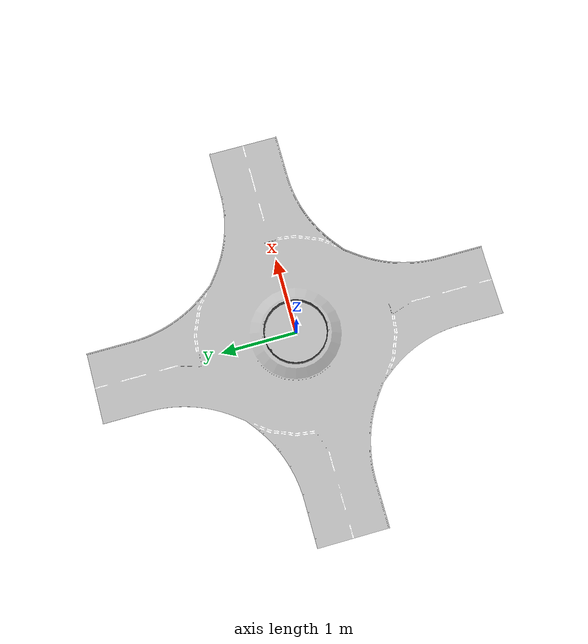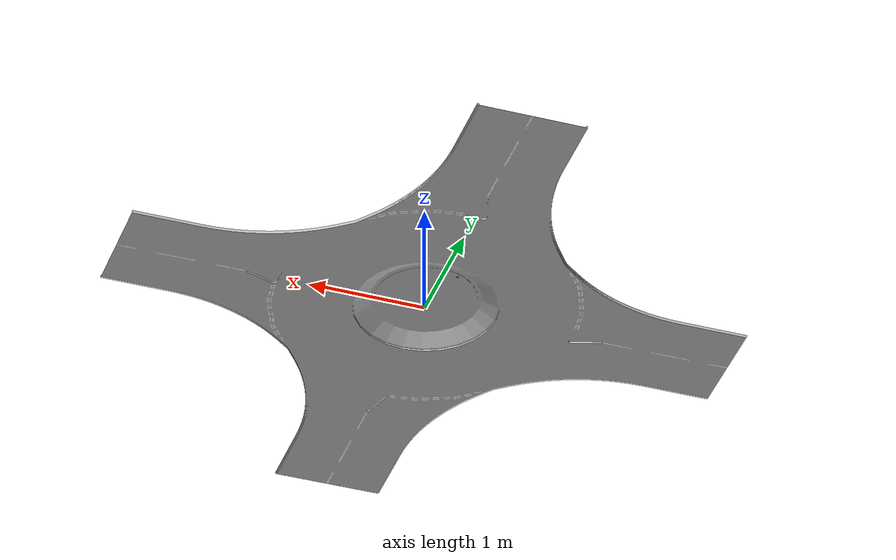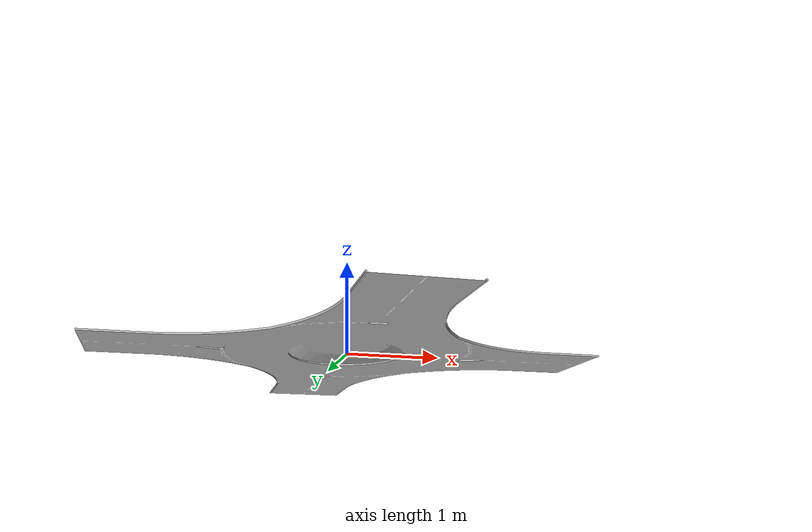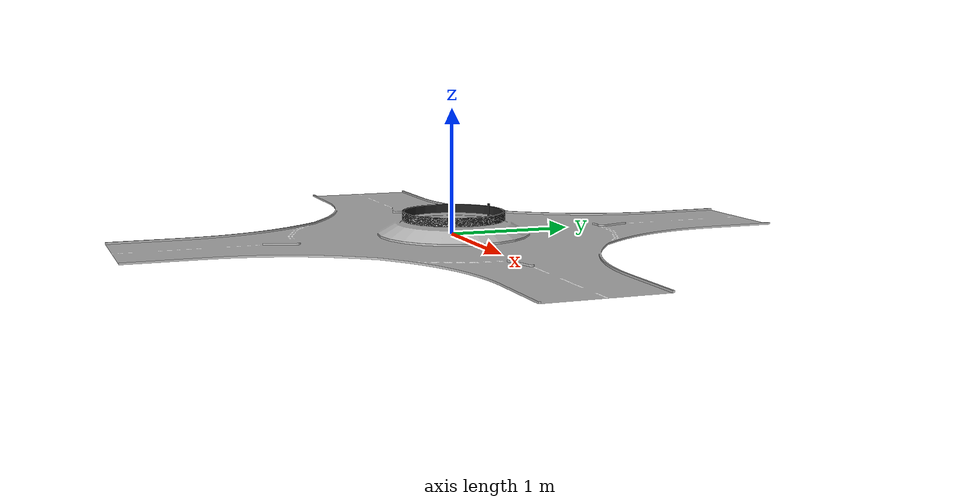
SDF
<?xml version='1.0'?>
<sdf version='1.7'>
  <model name='cross'>
    <link name='body'>
      <self_collide>0</self_collide>
      <enable_wind>0</enable_wind>
      <kinematic>0</kinematic>
      <pose>0 0 0 0 -0 0</pose>
      <gravity>1</gravity>
      <inertial>
        <mass>1</mass>
        <pose>0 0 0 0 -0 0</pose>
        <inertia>
          <ixx>1</ixx>
          <ixy>0</ixy>
          <ixz>0</ixz>
          <iyy>1</iyy>
          <iyz>0</iyz>
          <izz>1</izz>
        </inertia>
      </inertial>
      <visual name='visual'>
        <geometry>
          <mesh>
            <uri>/home/robolab/.gazebo/models/cross/meshes/test.dae</uri>
            <scale>0.1 0.1 0.1 </scale>
          </mesh>
        </geometry>
        <material>
          <shader type='pixel'>
            <normal_map>__default__</normal_map>
          </shader>
        </material>
        <pose>0 0 0 0 -0 0</pose>
        <transparency>0</transparency>
        <cast_shadows>1</cast_shadows>
      </visual>
    </link>
    <static>1</static>
    <allow_auto_disable>1</allow_auto_disable>
  </model>
</sdf>
